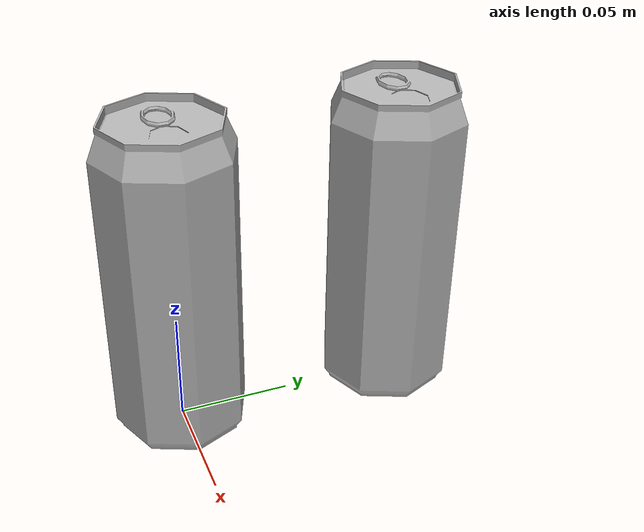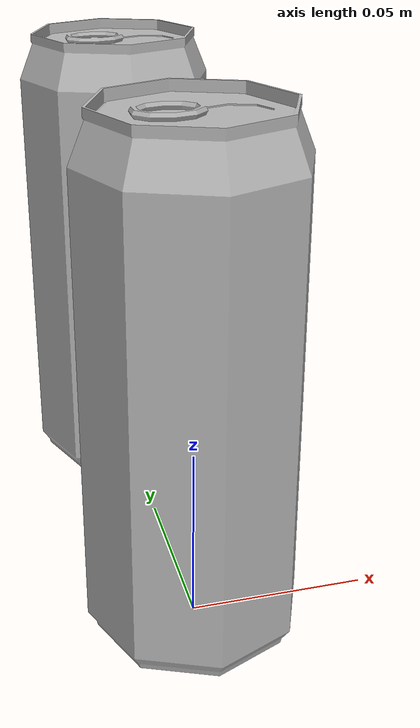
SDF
<sdf version='1.9'>
  <world name='world_demo'>
    <plugin name='ignition::gazebo::systems::UserCommands'
      filename='libignition-gazebo-user-commands-system.so' />
    <plugin name='ignition::gazebo::systems::Physics'
      filename='libignition-gazebo-physics-system.so' />
    <plugin name='ignition::gazebo::systems::SceneBroadcaster'
      filename='libignition-gazebo-scene-broadcaster-system.so' />
    <plugin filename="libignition-gazebo-imu-system.so"
      name="ignition::gazebo::systems::Imu">
</plugin>
    <physics name='1ms' type='ignored'>
      <max_step_size>0.001</max_step_size>
      <real_time_factor>1</real_time_factor>
      <real_time_update_rate>1000</real_time_update_rate>
    </physics>
    <gui fullscreen='false'>
      <plugin name='3D View' filename='MinimalScene'>
        <gz-gui>
          <title>3D View</title>
          <property type='bool' key='showTitleBar'>false</property>
          <property type='string' key='state'>docked</property>
        </gz-gui>
        <engine>ogre2</engine>
        <scene>scene</scene>
        <ambient_light>0.4 0.4 0.4</ambient_light>
        <background_color>0.8 0.8 0.8</background_color>
        <camera_pose>-6 0 6 0 0.5 0</camera_pose>
        <camera_clip>
          <near>0.25</near>
          <far>25000</far>
        </camera_clip>
      </plugin>
      <plugin name='Scene Manager' filename='GzSceneManager'>
        <gz-gui>
          <property key='resizable' type='bool'>false</property>
          <property key='width' type='double'>5</property>
          <property key='height' type='double'>5</property>
          <property key='state' type='string'>floating</property>
          <property key='showTitleBar' type='bool'>false</property>
        </gz-gui>
      </plugin>
      <plugin name='World control' filename='WorldControl'>
        <gz-gui>
          <title>World control</title>
          <property type='bool' key='showTitleBar'>false</property>
          <property type='bool' key='resizable'>false</property>
          <property type='double' key='height'>72</property>
          <property type='double' key='width'>121</property>
          <property type='double' key='z'>1</property>
          <property type='string' key='state'>floating</property>
          <anchors target='3D View'>
            <line own='left' target='left' />
            <line own='bottom' target='bottom' />
          </anchors>
        </gz-gui>
        <play_pause>true</play_pause>
        <step>true</step>
        <start_paused>true</start_paused>
        <service>/world/world_demo/control</service>
        <stats_topic>/world/world_demo/stats</stats_topic>
      </plugin>
      <plugin name='World stats' filename='WorldStats'>
        <gz-gui>
          <title>World stats</title>
          <property type='bool' key='showTitleBar'>false</property>
          <property type='bool' key='resizable'>false</property>
          <property type='double' key='height'>110</property>
          <property type='double' key='width'>290</property>
          <property type='double' key='z'>1</property>
          <property type='string' key='state'>floating</property>
          <anchors target='3D View'>
            <line own='right' target='right' />
            <line own='bottom' target='bottom' />
          </anchors>
        </gz-gui>
        <sim_time>true</sim_time>
        <real_time>true</real_time>
        <real_time_factor>true</real_time_factor>
        <iterations>true</iterations>
        <topic>/world/world_demo/stats</topic>
      </plugin>
      <plugin name='Entity tree' filename='EntityTree' />
    </gui>
    <gravity>0 0 -9.8</gravity>
    <magnetic_field>6e-06 2.3e-05 -4.2e-05</magnetic_field>
    <atmosphere type='adiabatic' />
    <scene>
      <ambient>0.4 0.4 0.4 1</ambient>
      <background>0.7 0.7 0.7 1</background>
      <shadows>true</shadows>
    </scene>
    <include>
      <uri>https://fuel.gazebosim.org/1.0/OpenRobotics/models/Coke</uri>
      <name>Coke0</name>
      <pose>0 0 0 0 -0 0</pose>
    </include>
    <include>
      <uri>https://fuel.gazebosim.org/1.0/OpenRobotics/models/Coke</uri>
      <name>Coke1</name>
      <pose>0 0.1 0 0 -0 0</pose>
    </include>
    <light name='sun' type='directional'>
      <pose>0 0 10 0 -0 0</pose>
      <cast_shadows>true</cast_shadows>
      <intensity>1</intensity>
      <direction>-0.5 0.1 -0.9</direction>
      <diffuse>0.8 0.8 0.8 1</diffuse>
      <specular>0.2 0.2 0.2 1</specular>
      <attenuation>
        <range>1000</range>
        <linear>0.01</linear>
        <constant>0.90000000000000002</constant>
        <quadratic>0.001</quadratic>
      </attenuation>
      <spot>
        <inner_angle>0</inner_angle>
        <outer_angle>0</outer_angle>
        <falloff>0</falloff>
      </spot>
    </light>
  </world>
</sdf>

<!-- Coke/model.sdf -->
<sdf version="1.6">
  <model name='Coke'>
    <static>true</static>
    <link name="body">
      <pose>0 0 0 0 0 0</pose>

        <visual name="visual">
          <geometry>
            <mesh><uri>model://Coke/meshes/coke.obj</uri></mesh>
          </geometry>
        </visual>

        <collision name="collision">
          <geometry>
            <mesh><uri>model://Coke/meshes/coke.obj</uri></mesh>
          </geometry>
        </collision>

        <!-- TODO: Replace with accurate values of mass and inertia -->
        <inertial>
          <mass>1.0</mass>
          <inertia>
            <ixx>0.003366666666666667</ixx>
            <iyy>0.0008666666666666667</iyy>
            <izz>0.0041666666666666675</izz>
          </inertia>
        </inertial>

    </link>

  </model>
</sdf>
